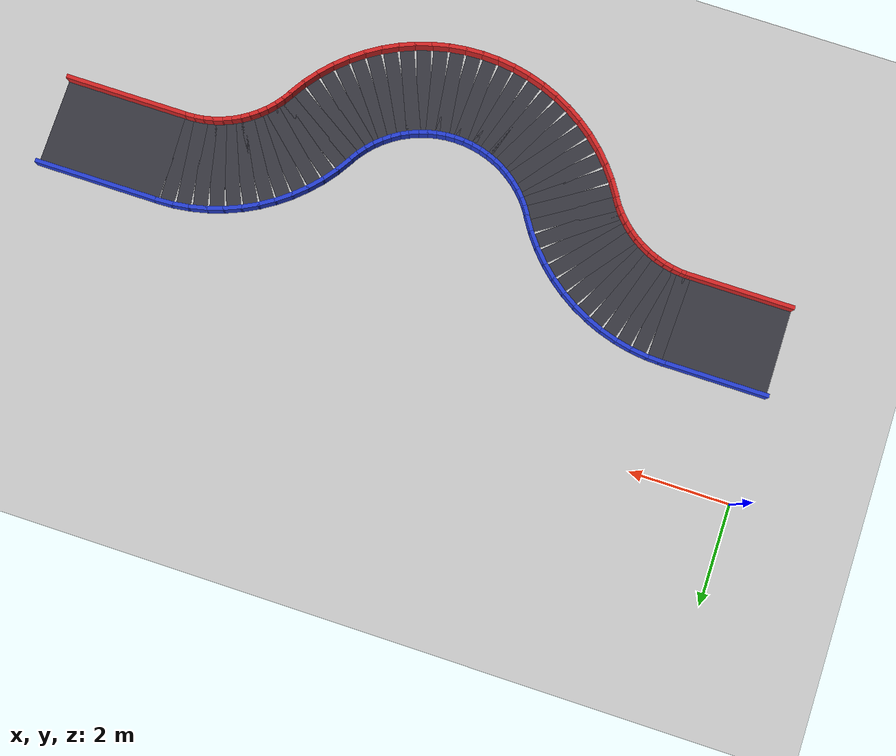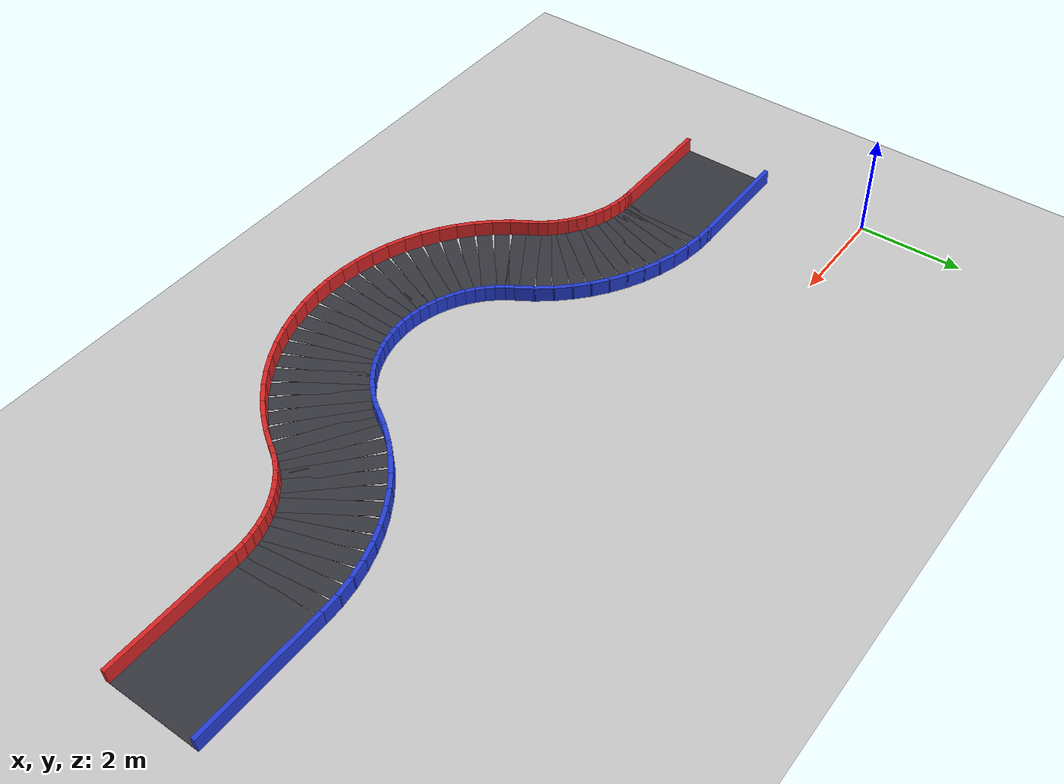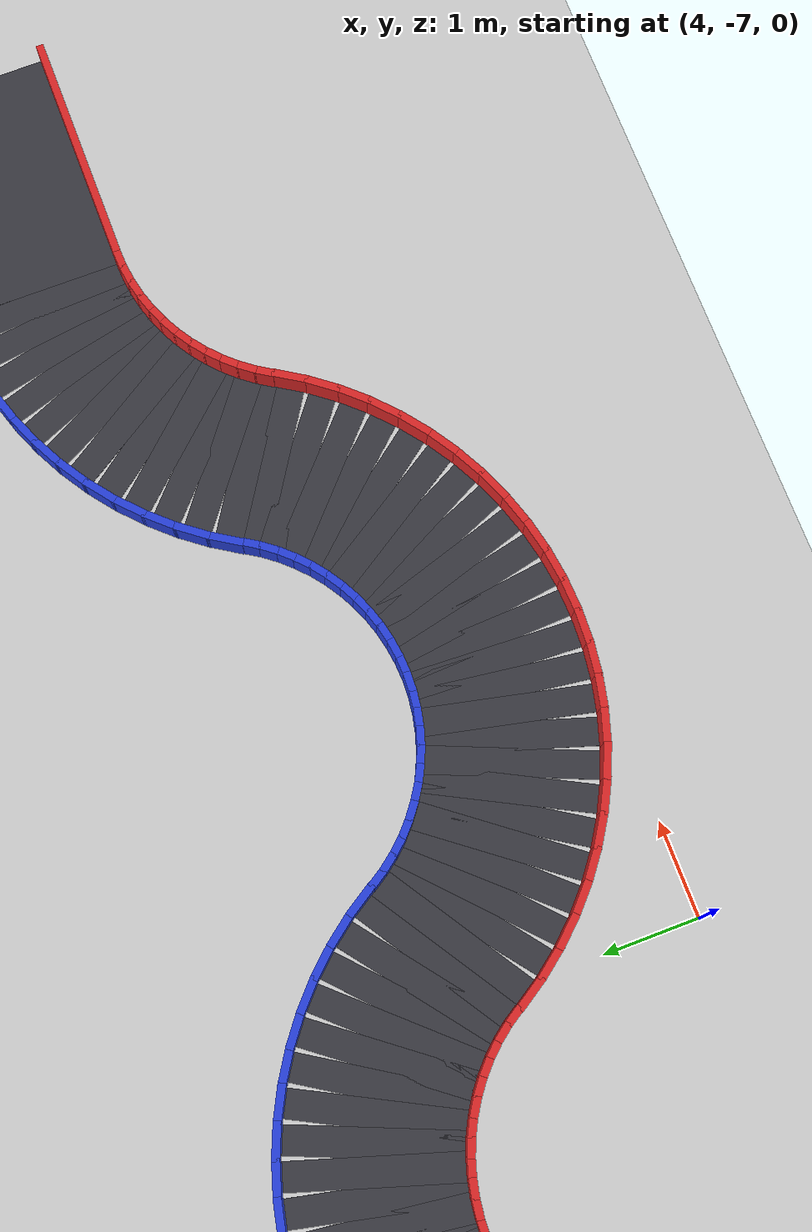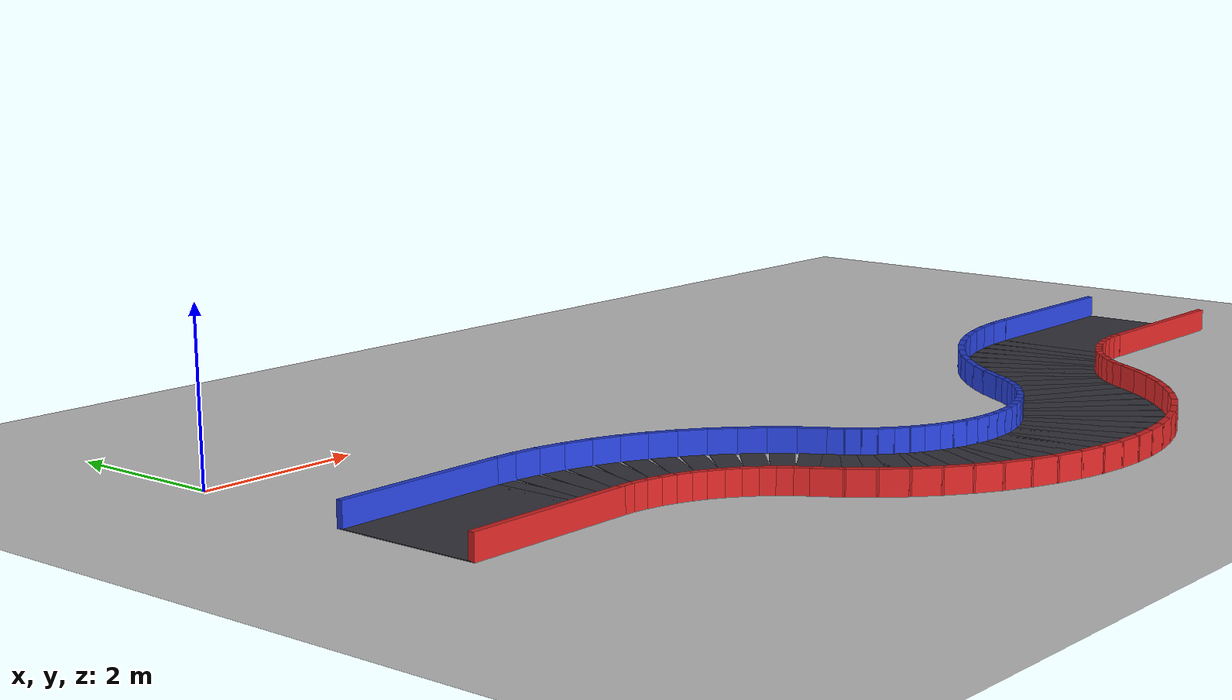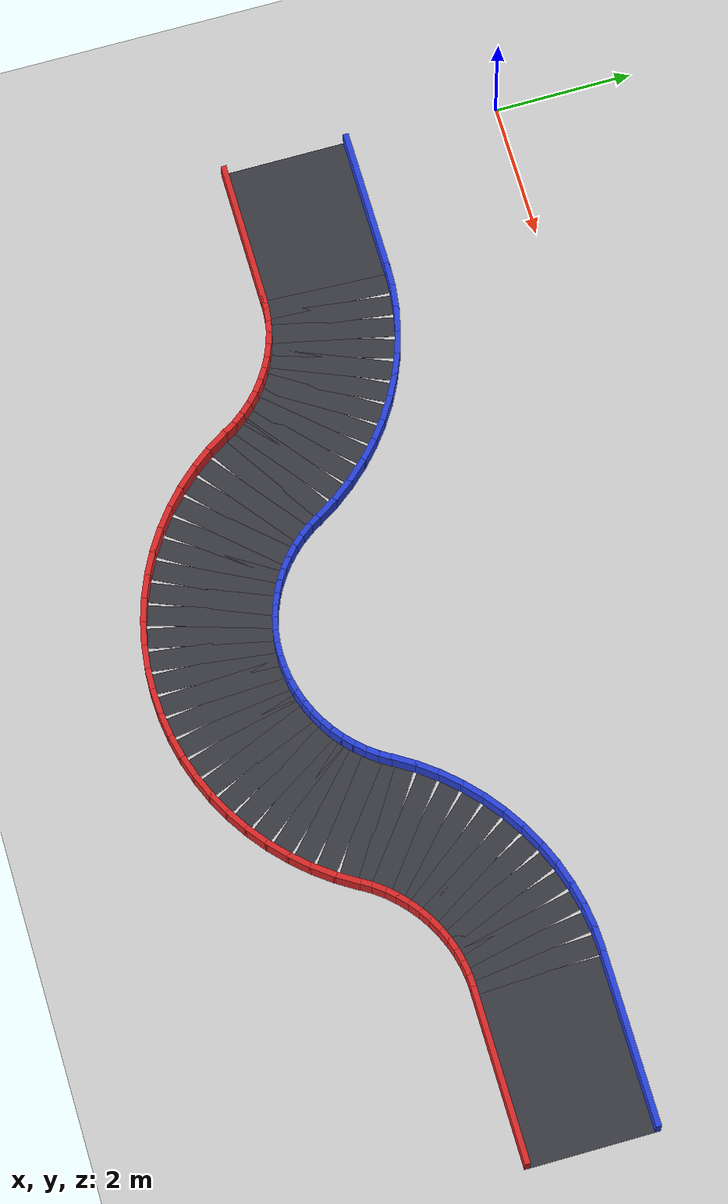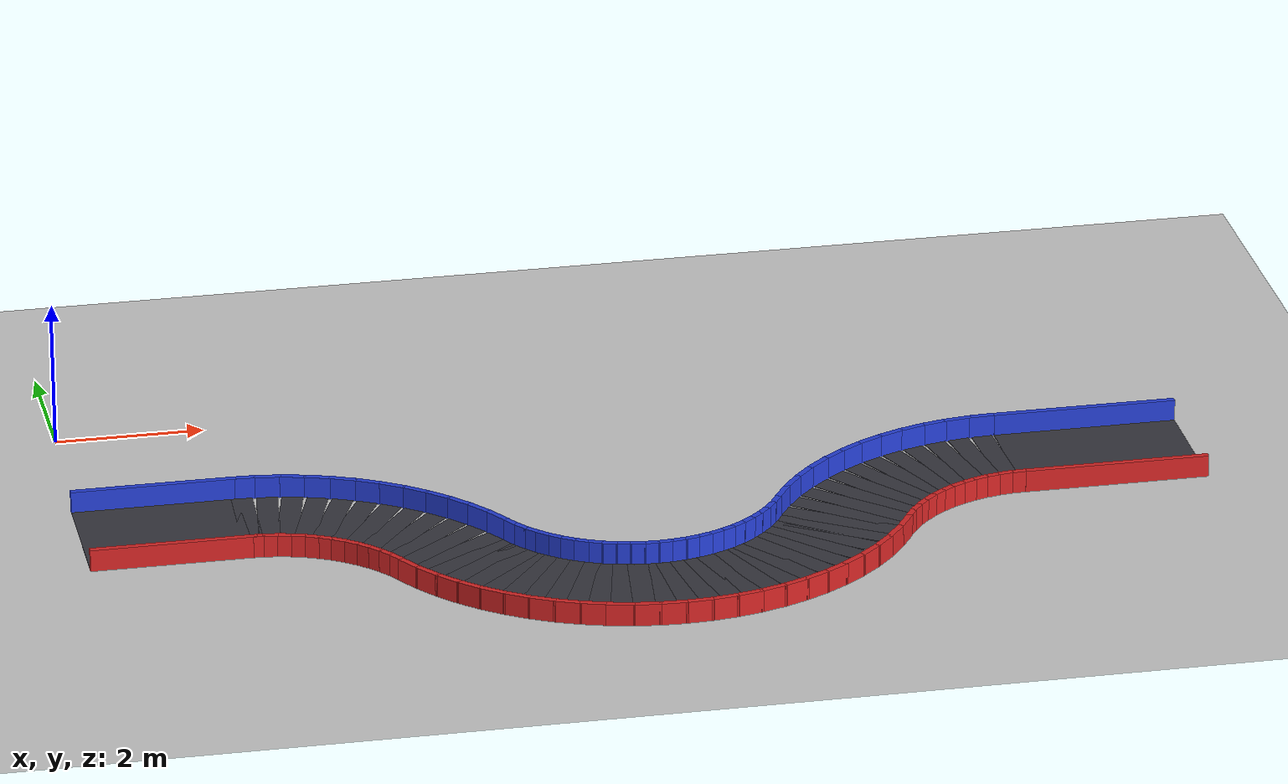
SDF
<?xml version="1.0" ?>
<sdf version="1.6">
  <world name="s_curve_world">
    <gui fullscreen="0">
      <camera name="user_camera">
        <pose>8.0 -3.1 16.0 0 1.57079 1.57079</pose>
        <view_controller>orbit</view_controller>
      </camera>
    </gui>
    <include><uri>model://ground_plane</uri></include>
    <include><uri>model://sun</uri></include>

    <!-- スタート直線 -->
    <model name="flr_st"><static>true</static><pose>1.0 -3.1 0.005 0 0 0</pose><link name="l"><visual name="v"><geometry><box><size>2.2 1.8 0.01</size></box></geometry><material><ambient>0.22 0.22 0.25 1</ambient><diffuse>0.22 0.22 0.25 1</diffuse></material></visual></link></model>
    <model name="wl_st"><static>true</static><pose>1.0 -2.2 0.15 0 0 0</pose><link name="l"><collision name="c"><geometry><box><size>2.2 0.08 0.3</size></box></geometry></collision><visual name="v"><geometry><box><size>2.2 0.08 0.3</size></box></geometry><material><ambient>0.15 0.25 0.85 1</ambient><diffuse>0.15 0.25 0.85 1</diffuse></material></visual></link></model>
    <model name="wr_st"><static>true</static><pose>1.0 -4.0 0.15 0 0 0</pose><link name="l"><collision name="c"><geometry><box><size>2.2 0.08 0.3</size></box></geometry></collision><visual name="v"><geometry><box><size>2.2 0.08 0.3</size></box></geometry><material><ambient>0.85 0.15 0.15 1</ambient><diffuse>0.85 0.15 0.15 1</diffuse></material></visual></link></model>
    <model name="f_c1_0"><static>true</static><pose>2.131 -3.103 0.005 0 0 -0.044</pose><link name="l"><visual name="v"><geometry><box><size>0.288 1.8 0.01</size></box></geometry><material><ambient>0.22 0.22 0.25 1</ambient><diffuse>0.22 0.22 0.25 1</diffuse></material></visual></link></model>
    <model name="wl_c1_0"><static>true</static><pose>2.170 -2.204 0.15 0 0 -0.044</pose><link name="l"><collision name="c"><geometry><box><size>0.374 0.08 0.3</size></box></geometry></collision><visual name="v"><geometry><box><size>0.374 0.08 0.3</size></box></geometry><material><ambient>0.15 0.25 0.85 1</ambient><diffuse>0.15 0.25 0.85 1</diffuse></material></visual></link></model>
    <model name="wr_c1_0"><static>true</static><pose>2.092 -4.002 0.15 0 0 -0.044</pose><link name="l"><collision name="c"><geometry><box><size>0.202 0.08 0.3</size></box></geometry></collision><visual name="v"><geometry><box><size>0.202 0.08 0.3</size></box></geometry><material><ambient>0.85 0.15 0.15 1</ambient><diffuse>0.85 0.15 0.15 1</diffuse></material></visual></link></model>
    <model name="f_c1_1"><static>true</static><pose>2.392 -3.126 0.005 0 0 -0.131</pose><link name="l"><visual name="v"><geometry><box><size>0.288 1.8 0.01</size></box></geometry><material><ambient>0.22 0.22 0.25 1</ambient><diffuse>0.22 0.22 0.25 1</diffuse></material></visual></link></model>
    <model name="wl_c1_1"><static>true</static><pose>2.509 -2.233 0.15 0 0 -0.131</pose><link name="l"><collision name="c"><geometry><box><size>0.374 0.08 0.3</size></box></geometry></collision><visual name="v"><geometry><box><size>0.374 0.08 0.3</size></box></geometry><material><ambient>0.15 0.25 0.85 1</ambient><diffuse>0.15 0.25 0.85 1</diffuse></material></visual></link></model>
    <model name="wr_c1_1"><static>true</static><pose>2.274 -4.018 0.15 0 0 -0.131</pose><link name="l"><collision name="c"><geometry><box><size>0.202 0.08 0.3</size></box></geometry></collision><visual name="v"><geometry><box><size>0.202 0.08 0.3</size></box></geometry><material><ambient>0.85 0.15 0.15 1</ambient><diffuse>0.85 0.15 0.15 1</diffuse></material></visual></link></model>
    <model name="f_c1_2"><static>true</static><pose>2.649 -3.171 0.005 0 0 -0.218</pose><link name="l"><visual name="v"><geometry><box><size>0.288 1.8 0.01</size></box></geometry><material><ambient>0.22 0.22 0.25 1</ambient><diffuse>0.22 0.22 0.25 1</diffuse></material></visual></link></model>
    <model name="wl_c1_2"><static>true</static><pose>2.844 -2.292 0.15 0 0 -0.218</pose><link name="l"><collision name="c"><geometry><box><size>0.374 0.08 0.3</size></box></geometry></collision><visual name="v"><geometry><box><size>0.374 0.08 0.3</size></box></geometry><material><ambient>0.15 0.25 0.85 1</ambient><diffuse>0.15 0.25 0.85 1</diffuse></material></visual></link></model>
    <model name="wr_c1_2"><static>true</static><pose>2.455 -4.050 0.15 0 0 -0.218</pose><link name="l"><collision name="c"><geometry><box><size>0.202 0.08 0.3</size></box></geometry></collision><visual name="v"><geometry><box><size>0.202 0.08 0.3</size></box></geometry><material><ambient>0.85 0.15 0.15 1</ambient><diffuse>0.85 0.15 0.15 1</diffuse></material></visual></link></model>
    <model name="f_c1_3"><static>true</static><pose>2.902 -3.239 0.005 0 0 -0.305</pose><link name="l"><visual name="v"><geometry><box><size>0.288 1.8 0.01</size></box></geometry><material><ambient>0.22 0.22 0.25 1</ambient><diffuse>0.22 0.22 0.25 1</diffuse></material></visual></link></model>
    <model name="wl_c1_3"><static>true</static><pose>3.173 -2.381 0.15 0 0 -0.305</pose><link name="l"><collision name="c"><geometry><box><size>0.374 0.08 0.3</size></box></geometry></collision><visual name="v"><geometry><box><size>0.374 0.08 0.3</size></box></geometry><material><ambient>0.15 0.25 0.85 1</ambient><diffuse>0.15 0.25 0.85 1</diffuse></material></visual></link></model>
    <model name="wr_c1_3"><static>true</static><pose>2.631 -4.097 0.15 0 0 -0.305</pose><link name="l"><collision name="c"><geometry><box><size>0.202 0.08 0.3</size></box></geometry></collision><visual name="v"><geometry><box><size>0.202 0.08 0.3</size></box></geometry><material><ambient>0.85 0.15 0.15 1</ambient><diffuse>0.85 0.15 0.15 1</diffuse></material></visual></link></model>
    <model name="f_c1_4"><static>true</static><pose>3.148 -3.328 0.005 0 0 -0.393</pose><link name="l"><visual name="v"><geometry><box><size>0.288 1.8 0.01</size></box></geometry><material><ambient>0.22 0.22 0.25 1</ambient><diffuse>0.22 0.22 0.25 1</diffuse></material></visual></link></model>
    <model name="wl_c1_4"><static>true</static><pose>3.492 -2.497 0.15 0 0 -0.393</pose><link name="l"><collision name="c"><geometry><box><size>0.374 0.08 0.3</size></box></geometry></collision><visual name="v"><geometry><box><size>0.374 0.08 0.3</size></box></geometry><material><ambient>0.15 0.25 0.85 1</ambient><diffuse>0.15 0.25 0.85 1</diffuse></material></visual></link></model>
    <model name="wr_c1_4"><static>true</static><pose>2.804 -4.160 0.15 0 0 -0.393</pose><link name="l"><collision name="c"><geometry><box><size>0.202 0.08 0.3</size></box></geometry></collision><visual name="v"><geometry><box><size>0.202 0.08 0.3</size></box></geometry><material><ambient>0.85 0.15 0.15 1</ambient><diffuse>0.85 0.15 0.15 1</diffuse></material></visual></link></model>
    <model name="f_c1_5"><static>true</static><pose>3.385 -3.439 0.005 0 0 -0.480</pose><link name="l"><visual name="v"><geometry><box><size>0.288 1.8 0.01</size></box></geometry><material><ambient>0.22 0.22 0.25 1</ambient><diffuse>0.22 0.22 0.25 1</diffuse></material></visual></link></model>
    <model name="wl_c1_5"><static>true</static><pose>3.801 -2.641 0.15 0 0 -0.480</pose><link name="l"><collision name="c"><geometry><box><size>0.374 0.08 0.3</size></box></geometry></collision><visual name="v"><geometry><box><size>0.374 0.08 0.3</size></box></geometry><material><ambient>0.15 0.25 0.85 1</ambient><diffuse>0.15 0.25 0.85 1</diffuse></material></visual></link></model>
    <model name="wr_c1_5"><static>true</static><pose>2.970 -4.237 0.15 0 0 -0.480</pose><link name="l"><collision name="c"><geometry><box><size>0.202 0.08 0.3</size></box></geometry></collision><visual name="v"><geometry><box><size>0.202 0.08 0.3</size></box></geometry><material><ambient>0.85 0.15 0.15 1</ambient><diffuse>0.85 0.15 0.15 1</diffuse></material></visual></link></model>
    <model name="f_c1_6"><static>true</static><pose>3.612 -3.570 0.005 0 0 -0.567</pose><link name="l"><visual name="v"><geometry><box><size>0.288 1.8 0.01</size></box></geometry><material><ambient>0.22 0.22 0.25 1</ambient><diffuse>0.22 0.22 0.25 1</diffuse></material></visual></link></model>
    <model name="wl_c1_6"><static>true</static><pose>4.095 -2.811 0.15 0 0 -0.567</pose><link name="l"><collision name="c"><geometry><box><size>0.374 0.08 0.3</size></box></geometry></collision><visual name="v"><geometry><box><size>0.374 0.08 0.3</size></box></geometry><material><ambient>0.15 0.25 0.85 1</ambient><diffuse>0.15 0.25 0.85 1</diffuse></material></visual></link></model>
    <model name="wr_c1_6"><static>true</static><pose>3.128 -4.329 0.15 0 0 -0.567</pose><link name="l"><collision name="c"><geometry><box><size>0.202 0.08 0.3</size></box></geometry></collision><visual name="v"><geometry><box><size>0.202 0.08 0.3</size></box></geometry><material><ambient>0.85 0.15 0.15 1</ambient><diffuse>0.85 0.15 0.15 1</diffuse></material></visual></link></model>
    <model name="f_c1_7"><static>true</static><pose>3.826 -3.720 0.005 0 0 -0.654</pose><link name="l"><visual name="v"><geometry><box><size>0.288 1.8 0.01</size></box></geometry><material><ambient>0.22 0.22 0.25 1</ambient><diffuse>0.22 0.22 0.25 1</diffuse></material></visual></link></model>
    <model name="wl_c1_7"><static>true</static><pose>4.374 -3.006 0.15 0 0 -0.654</pose><link name="l"><collision name="c"><geometry><box><size>0.374 0.08 0.3</size></box></geometry></collision><visual name="v"><geometry><box><size>0.374 0.08 0.3</size></box></geometry><material><ambient>0.15 0.25 0.85 1</ambient><diffuse>0.15 0.25 0.85 1</diffuse></material></visual></link></model>
    <model name="wr_c1_7"><static>true</static><pose>3.278 -4.434 0.15 0 0 -0.654</pose><link name="l"><collision name="c"><geometry><box><size>0.202 0.08 0.3</size></box></geometry></collision><visual name="v"><geometry><box><size>0.202 0.08 0.3</size></box></geometry><material><ambient>0.85 0.15 0.15 1</ambient><diffuse>0.85 0.15 0.15 1</diffuse></material></visual></link></model>
    <model name="f_c1_8"><static>true</static><pose>4.027 -3.888 0.005 0 0 -0.742</pose><link name="l"><visual name="v"><geometry><box><size>0.288 1.8 0.01</size></box></geometry><material><ambient>0.22 0.22 0.25 1</ambient><diffuse>0.22 0.22 0.25 1</diffuse></material></visual></link></model>
    <model name="wl_c1_8"><static>true</static><pose>4.635 -3.225 0.15 0 0 -0.742</pose><link name="l"><collision name="c"><geometry><box><size>0.374 0.08 0.3</size></box></geometry></collision><visual name="v"><geometry><box><size>0.374 0.08 0.3</size></box></geometry><material><ambient>0.15 0.25 0.85 1</ambient><diffuse>0.15 0.25 0.85 1</diffuse></material></visual></link></model>
    <model name="wr_c1_8"><static>true</static><pose>3.419 -4.552 0.15 0 0 -0.742</pose><link name="l"><collision name="c"><geometry><box><size>0.202 0.08 0.3</size></box></geometry></collision><visual name="v"><geometry><box><size>0.202 0.08 0.3</size></box></geometry><material><ambient>0.85 0.15 0.15 1</ambient><diffuse>0.85 0.15 0.15 1</diffuse></material></visual></link></model>
    <model name="f_c1_9"><static>true</static><pose>4.212 -4.073 0.005 0 0 -0.829</pose><link name="l"><visual name="v"><geometry><box><size>0.288 1.8 0.01</size></box></geometry><material><ambient>0.22 0.22 0.25 1</ambient><diffuse>0.22 0.22 0.25 1</diffuse></material></visual></link></model>
    <model name="wl_c1_9"><static>true</static><pose>4.875 -3.465 0.15 0 0 -0.829</pose><link name="l"><collision name="c"><geometry><box><size>0.374 0.08 0.3</size></box></geometry></collision><visual name="v"><geometry><box><size>0.374 0.08 0.3</size></box></geometry><material><ambient>0.15 0.25 0.85 1</ambient><diffuse>0.15 0.25 0.85 1</diffuse></material></visual></link></model>
    <model name="wr_c1_9"><static>true</static><pose>3.548 -4.681 0.15 0 0 -0.829</pose><link name="l"><collision name="c"><geometry><box><size>0.202 0.08 0.3</size></box></geometry></collision><visual name="v"><geometry><box><size>0.202 0.08 0.3</size></box></geometry><material><ambient>0.85 0.15 0.15 1</ambient><diffuse>0.85 0.15 0.15 1</diffuse></material></visual></link></model>
    <model name="f_c1_10"><static>true</static><pose>4.380 -4.274 0.005 0 0 -0.916</pose><link name="l"><visual name="v"><geometry><box><size>0.288 1.8 0.01</size></box></geometry><material><ambient>0.22 0.22 0.25 1</ambient><diffuse>0.22 0.22 0.25 1</diffuse></material></visual></link></model>
    <model name="wl_c1_10"><static>true</static><pose>5.094 -3.726 0.15 0 0 -0.916</pose><link name="l"><collision name="c"><geometry><box><size>0.374 0.08 0.3</size></box></geometry></collision><visual name="v"><geometry><box><size>0.374 0.08 0.3</size></box></geometry><material><ambient>0.15 0.25 0.85 1</ambient><diffuse>0.15 0.25 0.85 1</diffuse></material></visual></link></model>
    <model name="wr_c1_10"><static>true</static><pose>3.666 -4.822 0.15 0 0 -0.916</pose><link name="l"><collision name="c"><geometry><box><size>0.202 0.08 0.3</size></box></geometry></collision><visual name="v"><geometry><box><size>0.202 0.08 0.3</size></box></geometry><material><ambient>0.85 0.15 0.15 1</ambient><diffuse>0.85 0.15 0.15 1</diffuse></material></visual></link></model>
    <model name="f_c1_11"><static>true</static><pose>4.530 -4.488 0.005 0 0 -1.004</pose><link name="l"><visual name="v"><geometry><box><size>0.288 1.8 0.01</size></box></geometry><material><ambient>0.22 0.22 0.25 1</ambient><diffuse>0.22 0.22 0.25 1</diffuse></material></visual></link></model>
    <model name="wl_c1_11"><static>true</static><pose>5.289 -4.005 0.15 0 0 -1.004</pose><link name="l"><collision name="c"><geometry><box><size>0.374 0.08 0.3</size></box></geometry></collision><visual name="v"><geometry><box><size>0.374 0.08 0.3</size></box></geometry><material><ambient>0.15 0.25 0.85 1</ambient><diffuse>0.15 0.25 0.85 1</diffuse></material></visual></link></model>
    <model name="wr_c1_11"><static>true</static><pose>3.771 -4.972 0.15 0 0 -1.004</pose><link name="l"><collision name="c"><geometry><box><size>0.202 0.08 0.3</size></box></geometry></collision><visual name="v"><geometry><box><size>0.202 0.08 0.3</size></box></geometry><material><ambient>0.85 0.15 0.15 1</ambient><diffuse>0.85 0.15 0.15 1</diffuse></material></visual></link></model>
    <model name="f_c2_0"><static>true</static><pose>4.666 -4.712 0.005 0 0 -1.004</pose><link name="l"><visual name="v"><geometry><box><size>0.288 1.8 0.01</size></box></geometry><material><ambient>0.22 0.22 0.25 1</ambient><diffuse>0.22 0.22 0.25 1</diffuse></material></visual></link></model>
    <model name="wl_c2_0"><static>true</static><pose>5.425 -4.228 0.15 0 0 -1.004</pose><link name="l"><collision name="c"><geometry><box><size>0.202 0.08 0.3</size></box></geometry></collision><visual name="v"><geometry><box><size>0.202 0.08 0.3</size></box></geometry><material><ambient>0.15 0.25 0.85 1</ambient><diffuse>0.15 0.25 0.85 1</diffuse></material></visual></link></model>
    <model name="wr_c2_0"><static>true</static><pose>3.907 -5.195 0.15 0 0 -1.004</pose><link name="l"><collision name="c"><geometry><box><size>0.374 0.08 0.3</size></box></geometry></collision><visual name="v"><geometry><box><size>0.374 0.08 0.3</size></box></geometry><material><ambient>0.85 0.15 0.15 1</ambient><diffuse>0.85 0.15 0.15 1</diffuse></material></visual></link></model>
    <model name="f_c2_1"><static>true</static><pose>4.816 -4.926 0.005 0 0 -0.916</pose><link name="l"><visual name="v"><geometry><box><size>0.288 1.8 0.01</size></box></geometry><material><ambient>0.22 0.22 0.25 1</ambient><diffuse>0.22 0.22 0.25 1</diffuse></material></visual></link></model>
    <model name="wl_c2_1"><static>true</static><pose>5.530 -4.378 0.15 0 0 -0.916</pose><link name="l"><collision name="c"><geometry><box><size>0.202 0.08 0.3</size></box></geometry></collision><visual name="v"><geometry><box><size>0.202 0.08 0.3</size></box></geometry><material><ambient>0.15 0.25 0.85 1</ambient><diffuse>0.15 0.25 0.85 1</diffuse></material></visual></link></model>
    <model name="wr_c2_1"><static>true</static><pose>4.102 -5.474 0.15 0 0 -0.916</pose><link name="l"><collision name="c"><geometry><box><size>0.374 0.08 0.3</size></box></geometry></collision><visual name="v"><geometry><box><size>0.374 0.08 0.3</size></box></geometry><material><ambient>0.85 0.15 0.15 1</ambient><diffuse>0.85 0.15 0.15 1</diffuse></material></visual></link></model>
    <model name="f_c2_2"><static>true</static><pose>4.984 -5.127 0.005 0 0 -0.829</pose><link name="l"><visual name="v"><geometry><box><size>0.288 1.8 0.01</size></box></geometry><material><ambient>0.22 0.22 0.25 1</ambient><diffuse>0.22 0.22 0.25 1</diffuse></material></visual></link></model>
    <model name="wl_c2_2"><static>true</static><pose>5.648 -4.519 0.15 0 0 -0.829</pose><link name="l"><collision name="c"><geometry><box><size>0.202 0.08 0.3</size></box></geometry></collision><visual name="v"><geometry><box><size>0.202 0.08 0.3</size></box></geometry><material><ambient>0.15 0.25 0.85 1</ambient><diffuse>0.15 0.25 0.85 1</diffuse></material></visual></link></model>
    <model name="wr_c2_2"><static>true</static><pose>4.321 -5.735 0.15 0 0 -0.829</pose><link name="l"><collision name="c"><geometry><box><size>0.374 0.08 0.3</size></box></geometry></collision><visual name="v"><geometry><box><size>0.374 0.08 0.3</size></box></geometry><material><ambient>0.85 0.15 0.15 1</ambient><diffuse>0.85 0.15 0.15 1</diffuse></material></visual></link></model>
    <model name="f_c2_3"><static>true</static><pose>5.169 -5.312 0.005 0 0 -0.742</pose><link name="l"><visual name="v"><geometry><box><size>0.288 1.8 0.01</size></box></geometry><material><ambient>0.22 0.22 0.25 1</ambient><diffuse>0.22 0.22 0.25 1</diffuse></material></visual></link></model>
    <model name="wl_c2_3"><static>true</static><pose>5.777 -4.648 0.15 0 0 -0.742</pose><link name="l"><collision name="c"><geometry><box><size>0.202 0.08 0.3</size></box></geometry></collision><visual name="v"><geometry><box><size>0.202 0.08 0.3</size></box></geometry><material><ambient>0.15 0.25 0.85 1</ambient><diffuse>0.15 0.25 0.85 1</diffuse></material></visual></link></model>
    <model name="wr_c2_3"><static>true</static><pose>4.561 -5.975 0.15 0 0 -0.742</pose><link name="l"><collision name="c"><geometry><box><size>0.374 0.08 0.3</size></box></geometry></collision><visual name="v"><geometry><box><size>0.374 0.08 0.3</size></box></geometry><material><ambient>0.85 0.15 0.15 1</ambient><diffuse>0.85 0.15 0.15 1</diffuse></material></visual></link></model>
    <model name="f_c2_4"><static>true</static><pose>5.370 -5.480 0.005 0 0 -0.654</pose><link name="l"><visual name="v"><geometry><box><size>0.288 1.8 0.01</size></box></geometry><material><ambient>0.22 0.22 0.25 1</ambient><diffuse>0.22 0.22 0.25 1</diffuse></material></visual></link></model>
    <model name="wl_c2_4"><static>true</static><pose>5.918 -4.766 0.15 0 0 -0.654</pose><link name="l"><collision name="c"><geometry><box><size>0.202 0.08 0.3</size></box></geometry></collision><visual name="v"><geometry><box><size>0.202 0.08 0.3</size></box></geometry><material><ambient>0.15 0.25 0.85 1</ambient><diffuse>0.15 0.25 0.85 1</diffuse></material></visual></link></model>
    <model name="wr_c2_4"><static>true</static><pose>4.822 -6.194 0.15 0 0 -0.654</pose><link name="l"><collision name="c"><geometry><box><size>0.374 0.08 0.3</size></box></geometry></collision><visual name="v"><geometry><box><size>0.374 0.08 0.3</size></box></geometry><material><ambient>0.85 0.15 0.15 1</ambient><diffuse>0.85 0.15 0.15 1</diffuse></material></visual></link></model>
    <model name="f_c2_5"><static>true</static><pose>5.584 -5.630 0.005 0 0 -0.567</pose><link name="l"><visual name="v"><geometry><box><size>0.288 1.8 0.01</size></box></geometry><material><ambient>0.22 0.22 0.25 1</ambient><diffuse>0.22 0.22 0.25 1</diffuse></material></visual></link></model>
    <model name="wl_c2_5"><static>true</static><pose>6.068 -4.871 0.15 0 0 -0.567</pose><link name="l"><collision name="c"><geometry><box><size>0.202 0.08 0.3</size></box></geometry></collision><visual name="v"><geometry><box><size>0.202 0.08 0.3</size></box></geometry><material><ambient>0.15 0.25 0.85 1</ambient><diffuse>0.15 0.25 0.85 1</diffuse></material></visual></link></model>
    <model name="wr_c2_5"><static>true</static><pose>5.101 -6.389 0.15 0 0 -0.567</pose><link name="l"><collision name="c"><geometry><box><size>0.374 0.08 0.3</size></box></geometry></collision><visual name="v"><geometry><box><size>0.374 0.08 0.3</size></box></geometry><material><ambient>0.85 0.15 0.15 1</ambient><diffuse>0.85 0.15 0.15 1</diffuse></material></visual></link></model>
    <model name="f_c2_6"><static>true</static><pose>5.811 -5.761 0.005 0 0 -0.480</pose><link name="l"><visual name="v"><geometry><box><size>0.288 1.8 0.01</size></box></geometry><material><ambient>0.22 0.22 0.25 1</ambient><diffuse>0.22 0.22 0.25 1</diffuse></material></visual></link></model>
    <model name="wl_c2_6"><static>true</static><pose>6.226 -4.963 0.15 0 0 -0.480</pose><link name="l"><collision name="c"><geometry><box><size>0.202 0.08 0.3</size></box></geometry></collision><visual name="v"><geometry><box><size>0.202 0.08 0.3</size></box></geometry><material><ambient>0.15 0.25 0.85 1</ambient><diffuse>0.15 0.25 0.85 1</diffuse></material></visual></link></model>
    <model name="wr_c2_6"><static>true</static><pose>5.395 -6.559 0.15 0 0 -0.480</pose><link name="l"><collision name="c"><geometry><box><size>0.374 0.08 0.3</size></box></geometry></collision><visual name="v"><geometry><box><size>0.374 0.08 0.3</size></box></geometry><material><ambient>0.85 0.15 0.15 1</ambient><diffuse>0.85 0.15 0.15 1</diffuse></material></visual></link></model>
    <model name="f_c2_7"><static>true</static><pose>6.048 -5.872 0.005 0 0 -0.393</pose><link name="l"><visual name="v"><geometry><box><size>0.288 1.8 0.01</size></box></geometry><material><ambient>0.22 0.22 0.25 1</ambient><diffuse>0.22 0.22 0.25 1</diffuse></material></visual></link></model>
    <model name="wl_c2_7"><static>true</static><pose>6.393 -5.040 0.15 0 0 -0.393</pose><link name="l"><collision name="c"><geometry><box><size>0.202 0.08 0.3</size></box></geometry></collision><visual name="v"><geometry><box><size>0.202 0.08 0.3</size></box></geometry><material><ambient>0.15 0.25 0.85 1</ambient><diffuse>0.15 0.25 0.85 1</diffuse></material></visual></link></model>
    <model name="wr_c2_7"><static>true</static><pose>5.704 -6.703 0.15 0 0 -0.393</pose><link name="l"><collision name="c"><geometry><box><size>0.374 0.08 0.3</size></box></geometry></collision><visual name="v"><geometry><box><size>0.374 0.08 0.3</size></box></geometry><material><ambient>0.85 0.15 0.15 1</ambient><diffuse>0.85 0.15 0.15 1</diffuse></material></visual></link></model>
    <model name="f_c2_8"><static>true</static><pose>6.294 -5.961 0.005 0 0 -0.305</pose><link name="l"><visual name="v"><geometry><box><size>0.288 1.8 0.01</size></box></geometry><material><ambient>0.22 0.22 0.25 1</ambient><diffuse>0.22 0.22 0.25 1</diffuse></material></visual></link></model>
    <model name="wl_c2_8"><static>true</static><pose>6.565 -5.103 0.15 0 0 -0.305</pose><link name="l"><collision name="c"><geometry><box><size>0.202 0.08 0.3</size></box></geometry></collision><visual name="v"><geometry><box><size>0.202 0.08 0.3</size></box></geometry><material><ambient>0.15 0.25 0.85 1</ambient><diffuse>0.15 0.25 0.85 1</diffuse></material></visual></link></model>
    <model name="wr_c2_8"><static>true</static><pose>6.023 -6.819 0.15 0 0 -0.305</pose><link name="l"><collision name="c"><geometry><box><size>0.374 0.08 0.3</size></box></geometry></collision><visual name="v"><geometry><box><size>0.374 0.08 0.3</size></box></geometry><material><ambient>0.85 0.15 0.15 1</ambient><diffuse>0.85 0.15 0.15 1</diffuse></material></visual></link></model>
    <model name="f_c2_9"><static>true</static><pose>6.547 -6.029 0.005 0 0 -0.218</pose><link name="l"><visual name="v"><geometry><box><size>0.288 1.8 0.01</size></box></geometry><material><ambient>0.22 0.22 0.25 1</ambient><diffuse>0.22 0.22 0.25 1</diffuse></material></visual></link></model>
    <model name="wl_c2_9"><static>true</static><pose>6.742 -5.150 0.15 0 0 -0.218</pose><link name="l"><collision name="c"><geometry><box><size>0.202 0.08 0.3</size></box></geometry></collision><visual name="v"><geometry><box><size>0.202 0.08 0.3</size></box></geometry><material><ambient>0.15 0.25 0.85 1</ambient><diffuse>0.15 0.25 0.85 1</diffuse></material></visual></link></model>
    <model name="wr_c2_9"><static>true</static><pose>6.352 -6.908 0.15 0 0 -0.218</pose><link name="l"><collision name="c"><geometry><box><size>0.374 0.08 0.3</size></box></geometry></collision><visual name="v"><geometry><box><size>0.374 0.08 0.3</size></box></geometry><material><ambient>0.85 0.15 0.15 1</ambient><diffuse>0.85 0.15 0.15 1</diffuse></material></visual></link></model>
    <model name="f_c2_10"><static>true</static><pose>6.805 -6.074 0.005 0 0 -0.131</pose><link name="l"><visual name="v"><geometry><box><size>0.288 1.8 0.01</size></box></geometry><material><ambient>0.22 0.22 0.25 1</ambient><diffuse>0.22 0.22 0.25 1</diffuse></material></visual></link></model>
    <model name="wl_c2_10"><static>true</static><pose>6.922 -5.182 0.15 0 0 -0.131</pose><link name="l"><collision name="c"><geometry><box><size>0.202 0.08 0.3</size></box></geometry></collision><visual name="v"><geometry><box><size>0.202 0.08 0.3</size></box></geometry><material><ambient>0.15 0.25 0.85 1</ambient><diffuse>0.15 0.25 0.85 1</diffuse></material></visual></link></model>
    <model name="wr_c2_10"><static>true</static><pose>6.687 -6.967 0.15 0 0 -0.131</pose><link name="l"><collision name="c"><geometry><box><size>0.374 0.08 0.3</size></box></geometry></collision><visual name="v"><geometry><box><size>0.374 0.08 0.3</size></box></geometry><material><ambient>0.85 0.15 0.15 1</ambient><diffuse>0.85 0.15 0.15 1</diffuse></material></visual></link></model>
    <model name="f_c2_11"><static>true</static><pose>7.065 -6.097 0.005 0 0 -0.044</pose><link name="l"><visual name="v"><geometry><box><size>0.288 1.8 0.01</size></box></geometry><material><ambient>0.22 0.22 0.25 1</ambient><diffuse>0.22 0.22 0.25 1</diffuse></material></visual></link></model>
    <model name="wl_c2_11"><static>true</static><pose>7.105 -5.198 0.15 0 0 -0.044</pose><link name="l"><collision name="c"><geometry><box><size>0.202 0.08 0.3</size></box></geometry></collision><visual name="v"><geometry><box><size>0.202 0.08 0.3</size></box></geometry><material><ambient>0.15 0.25 0.85 1</ambient><diffuse>0.15 0.25 0.85 1</diffuse></material></visual></link></model>
    <model name="wr_c2_11"><static>true</static><pose>7.026 -6.996 0.15 0 0 -0.044</pose><link name="l"><collision name="c"><geometry><box><size>0.374 0.08 0.3</size></box></geometry></collision><visual name="v"><geometry><box><size>0.374 0.08 0.3</size></box></geometry><material><ambient>0.85 0.15 0.15 1</ambient><diffuse>0.85 0.15 0.15 1</diffuse></material></visual></link></model>
    <model name="f_c2_12"><static>true</static><pose>7.327 -6.097 0.005 0 0 0.044</pose><link name="l"><visual name="v"><geometry><box><size>0.288 1.8 0.01</size></box></geometry><material><ambient>0.22 0.22 0.25 1</ambient><diffuse>0.22 0.22 0.25 1</diffuse></material></visual></link></model>
    <model name="wl_c2_12"><static>true</static><pose>7.288 -5.198 0.15 0 0 0.044</pose><link name="l"><collision name="c"><geometry><box><size>0.202 0.08 0.3</size></box></geometry></collision><visual name="v"><geometry><box><size>0.202 0.08 0.3</size></box></geometry><material><ambient>0.15 0.25 0.85 1</ambient><diffuse>0.15 0.25 0.85 1</diffuse></material></visual></link></model>
    <model name="wr_c2_12"><static>true</static><pose>7.366 -6.996 0.15 0 0 0.044</pose><link name="l"><collision name="c"><geometry><box><size>0.374 0.08 0.3</size></box></geometry></collision><visual name="v"><geometry><box><size>0.374 0.08 0.3</size></box></geometry><material><ambient>0.85 0.15 0.15 1</ambient><diffuse>0.85 0.15 0.15 1</diffuse></material></visual></link></model>
    <model name="f_c2_13"><static>true</static><pose>7.588 -6.074 0.005 0 0 0.131</pose><link name="l"><visual name="v"><geometry><box><size>0.288 1.8 0.01</size></box></geometry><material><ambient>0.22 0.22 0.25 1</ambient><diffuse>0.22 0.22 0.25 1</diffuse></material></visual></link></model>
    <model name="wl_c2_13"><static>true</static><pose>7.470 -5.182 0.15 0 0 0.131</pose><link name="l"><collision name="c"><geometry><box><size>0.202 0.08 0.3</size></box></geometry></collision><visual name="v"><geometry><box><size>0.202 0.08 0.3</size></box></geometry><material><ambient>0.15 0.25 0.85 1</ambient><diffuse>0.15 0.25 0.85 1</diffuse></material></visual></link></model>
    <model name="wr_c2_13"><static>true</static><pose>7.705 -6.967 0.15 0 0 0.131</pose><link name="l"><collision name="c"><geometry><box><size>0.374 0.08 0.3</size></box></geometry></collision><visual name="v"><geometry><box><size>0.374 0.08 0.3</size></box></geometry><material><ambient>0.85 0.15 0.15 1</ambient><diffuse>0.85 0.15 0.15 1</diffuse></material></visual></link></model>
    <model name="f_c2_14"><static>true</static><pose>7.845 -6.029 0.005 0 0 0.218</pose><link name="l"><visual name="v"><geometry><box><size>0.288 1.8 0.01</size></box></geometry><material><ambient>0.22 0.22 0.25 1</ambient><diffuse>0.22 0.22 0.25 1</diffuse></material></visual></link></model>
    <model name="wl_c2_14"><static>true</static><pose>7.651 -5.150 0.15 0 0 0.218</pose><link name="l"><collision name="c"><geometry><box><size>0.202 0.08 0.3</size></box></geometry></collision><visual name="v"><geometry><box><size>0.202 0.08 0.3</size></box></geometry><material><ambient>0.15 0.25 0.85 1</ambient><diffuse>0.15 0.25 0.85 1</diffuse></material></visual></link></model>
    <model name="wr_c2_14"><static>true</static><pose>8.040 -6.908 0.15 0 0 0.218</pose><link name="l"><collision name="c"><geometry><box><size>0.374 0.08 0.3</size></box></geometry></collision><visual name="v"><geometry><box><size>0.374 0.08 0.3</size></box></geometry><material><ambient>0.85 0.15 0.15 1</ambient><diffuse>0.85 0.15 0.15 1</diffuse></material></visual></link></model>
    <model name="f_c2_15"><static>true</static><pose>8.098 -5.961 0.005 0 0 0.305</pose><link name="l"><visual name="v"><geometry><box><size>0.288 1.8 0.01</size></box></geometry><material><ambient>0.22 0.22 0.25 1</ambient><diffuse>0.22 0.22 0.25 1</diffuse></material></visual></link></model>
    <model name="wl_c2_15"><static>true</static><pose>7.828 -5.103 0.15 0 0 0.305</pose><link name="l"><collision name="c"><geometry><box><size>0.202 0.08 0.3</size></box></geometry></collision><visual name="v"><geometry><box><size>0.202 0.08 0.3</size></box></geometry><material><ambient>0.15 0.25 0.85 1</ambient><diffuse>0.15 0.25 0.85 1</diffuse></material></visual></link></model>
    <model name="wr_c2_15"><static>true</static><pose>8.369 -6.819 0.15 0 0 0.305</pose><link name="l"><collision name="c"><geometry><box><size>0.374 0.08 0.3</size></box></geometry></collision><visual name="v"><geometry><box><size>0.374 0.08 0.3</size></box></geometry><material><ambient>0.85 0.15 0.15 1</ambient><diffuse>0.85 0.15 0.15 1</diffuse></material></visual></link></model>
    <model name="f_c2_16"><static>true</static><pose>8.344 -5.872 0.005 0 0 0.393</pose><link name="l"><visual name="v"><geometry><box><size>0.288 1.8 0.01</size></box></geometry><material><ambient>0.22 0.22 0.25 1</ambient><diffuse>0.22 0.22 0.25 1</diffuse></material></visual></link></model>
    <model name="wl_c2_16"><static>true</static><pose>8.000 -5.040 0.15 0 0 0.393</pose><link name="l"><collision name="c"><geometry><box><size>0.202 0.08 0.3</size></box></geometry></collision><visual name="v"><geometry><box><size>0.202 0.08 0.3</size></box></geometry><material><ambient>0.15 0.25 0.85 1</ambient><diffuse>0.15 0.25 0.85 1</diffuse></material></visual></link></model>
    <model name="wr_c2_16"><static>true</static><pose>8.689 -6.703 0.15 0 0 0.393</pose><link name="l"><collision name="c"><geometry><box><size>0.374 0.08 0.3</size></box></geometry></collision><visual name="v"><geometry><box><size>0.374 0.08 0.3</size></box></geometry><material><ambient>0.85 0.15 0.15 1</ambient><diffuse>0.85 0.15 0.15 1</diffuse></material></visual></link></model>
    <model name="f_c2_17"><static>true</static><pose>8.581 -5.761 0.005 0 0 0.480</pose><link name="l"><visual name="v"><geometry><box><size>0.288 1.8 0.01</size></box></geometry><material><ambient>0.22 0.22 0.25 1</ambient><diffuse>0.22 0.22 0.25 1</diffuse></material></visual></link></model>
    <model name="wl_c2_17"><static>true</static><pose>8.166 -4.963 0.15 0 0 0.480</pose><link name="l"><collision name="c"><geometry><box><size>0.202 0.08 0.3</size></box></geometry></collision><visual name="v"><geometry><box><size>0.202 0.08 0.3</size></box></geometry><material><ambient>0.15 0.25 0.85 1</ambient><diffuse>0.15 0.25 0.85 1</diffuse></material></visual></link></model>
    <model name="wr_c2_17"><static>true</static><pose>8.997 -6.559 0.15 0 0 0.480</pose><link name="l"><collision name="c"><geometry><box><size>0.374 0.08 0.3</size></box></geometry></collision><visual name="v"><geometry><box><size>0.374 0.08 0.3</size></box></geometry><material><ambient>0.85 0.15 0.15 1</ambient><diffuse>0.85 0.15 0.15 1</diffuse></material></visual></link></model>
    <model name="f_c2_18"><static>true</static><pose>8.808 -5.630 0.005 0 0 0.567</pose><link name="l"><visual name="v"><geometry><box><size>0.288 1.8 0.01</size></box></geometry><material><ambient>0.22 0.22 0.25 1</ambient><diffuse>0.22 0.22 0.25 1</diffuse></material></visual></link></model>
    <model name="wl_c2_18"><static>true</static><pose>8.324 -4.871 0.15 0 0 0.567</pose><link name="l"><collision name="c"><geometry><box><size>0.202 0.08 0.3</size></box></geometry></collision><visual name="v"><geometry><box><size>0.202 0.08 0.3</size></box></geometry><material><ambient>0.15 0.25 0.85 1</ambient><diffuse>0.15 0.25 0.85 1</diffuse></material></visual></link></model>
    <model name="wr_c2_18"><static>true</static><pose>9.292 -6.389 0.15 0 0 0.567</pose><link name="l"><collision name="c"><geometry><box><size>0.374 0.08 0.3</size></box></geometry></collision><visual name="v"><geometry><box><size>0.374 0.08 0.3</size></box></geometry><material><ambient>0.85 0.15 0.15 1</ambient><diffuse>0.85 0.15 0.15 1</diffuse></material></visual></link></model>
    <model name="f_c2_19"><static>true</static><pose>9.022 -5.480 0.005 0 0 0.654</pose><link name="l"><visual name="v"><geometry><box><size>0.288 1.8 0.01</size></box></geometry><material><ambient>0.22 0.22 0.25 1</ambient><diffuse>0.22 0.22 0.25 1</diffuse></material></visual></link></model>
    <model name="wl_c2_19"><static>true</static><pose>8.475 -4.766 0.15 0 0 0.654</pose><link name="l"><collision name="c"><geometry><box><size>0.202 0.08 0.3</size></box></geometry></collision><visual name="v"><geometry><box><size>0.202 0.08 0.3</size></box></geometry><material><ambient>0.15 0.25 0.85 1</ambient><diffuse>0.15 0.25 0.85 1</diffuse></material></visual></link></model>
    <model name="wr_c2_19"><static>true</static><pose>9.570 -6.194 0.15 0 0 0.654</pose><link name="l"><collision name="c"><geometry><box><size>0.374 0.08 0.3</size></box></geometry></collision><visual name="v"><geometry><box><size>0.374 0.08 0.3</size></box></geometry><material><ambient>0.85 0.15 0.15 1</ambient><diffuse>0.85 0.15 0.15 1</diffuse></material></visual></link></model>
    <model name="f_c2_20"><static>true</static><pose>9.223 -5.312 0.005 0 0 0.742</pose><link name="l"><visual name="v"><geometry><box><size>0.288 1.8 0.01</size></box></geometry><material><ambient>0.22 0.22 0.25 1</ambient><diffuse>0.22 0.22 0.25 1</diffuse></material></visual></link></model>
    <model name="wl_c2_20"><static>true</static><pose>8.615 -4.648 0.15 0 0 0.742</pose><link name="l"><collision name="c"><geometry><box><size>0.202 0.08 0.3</size></box></geometry></collision><visual name="v"><geometry><box><size>0.202 0.08 0.3</size></box></geometry><material><ambient>0.15 0.25 0.85 1</ambient><diffuse>0.15 0.25 0.85 1</diffuse></material></visual></link></model>
    <model name="wr_c2_20"><static>true</static><pose>9.831 -5.975 0.15 0 0 0.742</pose><link name="l"><collision name="c"><geometry><box><size>0.374 0.08 0.3</size></box></geometry></collision><visual name="v"><geometry><box><size>0.374 0.08 0.3</size></box></geometry><material><ambient>0.85 0.15 0.15 1</ambient><diffuse>0.85 0.15 0.15 1</diffuse></material></visual></link></model>
    <model name="f_c2_21"><static>true</static><pose>9.408 -5.127 0.005 0 0 0.829</pose><link name="l"><visual name="v"><geometry><box><size>0.288 1.8 0.01</size></box></geometry><material><ambient>0.22 0.22 0.25 1</ambient><diffuse>0.22 0.22 0.25 1</diffuse></material></visual></link></model>
    <model name="wl_c2_21"><static>true</static><pose>8.744 -4.519 0.15 0 0 0.829</pose><link name="l"><collision name="c"><geometry><box><size>0.202 0.08 0.3</size></box></geometry></collision><visual name="v"><geometry><box><size>0.202 0.08 0.3</size></box></geometry><material><ambient>0.15 0.25 0.85 1</ambient><diffuse>0.15 0.25 0.85 1</diffuse></material></visual></link></model>
    <model name="wr_c2_21"><static>true</static><pose>10.072 -5.735 0.15 0 0 0.829</pose><link name="l"><collision name="c"><geometry><box><size>0.374 0.08 0.3</size></box></geometry></collision><visual name="v"><geometry><box><size>0.374 0.08 0.3</size></box></geometry><material><ambient>0.85 0.15 0.15 1</ambient><diffuse>0.85 0.15 0.15 1</diffuse></material></visual></link></model>
    <model name="f_c2_22"><static>true</static><pose>9.576 -4.926 0.005 0 0 0.916</pose><link name="l"><visual name="v"><geometry><box><size>0.288 1.8 0.01</size></box></geometry><material><ambient>0.22 0.22 0.25 1</ambient><diffuse>0.22 0.22 0.25 1</diffuse></material></visual></link></model>
    <model name="wl_c2_22"><static>true</static><pose>8.862 -4.378 0.15 0 0 0.916</pose><link name="l"><collision name="c"><geometry><box><size>0.202 0.08 0.3</size></box></geometry></collision><visual name="v"><geometry><box><size>0.202 0.08 0.3</size></box></geometry><material><ambient>0.15 0.25 0.85 1</ambient><diffuse>0.15 0.25 0.85 1</diffuse></material></visual></link></model>
    <model name="wr_c2_22"><static>true</static><pose>10.290 -5.474 0.15 0 0 0.916</pose><link name="l"><collision name="c"><geometry><box><size>0.374 0.08 0.3</size></box></geometry></collision><visual name="v"><geometry><box><size>0.374 0.08 0.3</size></box></geometry><material><ambient>0.85 0.15 0.15 1</ambient><diffuse>0.85 0.15 0.15 1</diffuse></material></visual></link></model>
    <model name="f_c2_23"><static>true</static><pose>9.726 -4.712 0.005 0 0 1.004</pose><link name="l"><visual name="v"><geometry><box><size>0.288 1.8 0.01</size></box></geometry><material><ambient>0.22 0.22 0.25 1</ambient><diffuse>0.22 0.22 0.25 1</diffuse></material></visual></link></model>
    <model name="wl_c2_23"><static>true</static><pose>8.967 -4.228 0.15 0 0 1.004</pose><link name="l"><collision name="c"><geometry><box><size>0.202 0.08 0.3</size></box></geometry></collision><visual name="v"><geometry><box><size>0.202 0.08 0.3</size></box></geometry><material><ambient>0.15 0.25 0.85 1</ambient><diffuse>0.15 0.25 0.85 1</diffuse></material></visual></link></model>
    <model name="wr_c2_23"><static>true</static><pose>10.485 -5.195 0.15 0 0 1.004</pose><link name="l"><collision name="c"><geometry><box><size>0.374 0.08 0.3</size></box></geometry></collision><visual name="v"><geometry><box><size>0.374 0.08 0.3</size></box></geometry><material><ambient>0.85 0.15 0.15 1</ambient><diffuse>0.85 0.15 0.15 1</diffuse></material></visual></link></model>
    <model name="f_c3_0"><static>true</static><pose>9.862 -4.488 0.005 0 0 1.004</pose><link name="l"><visual name="v"><geometry><box><size>0.288 1.8 0.01</size></box></geometry><material><ambient>0.22 0.22 0.25 1</ambient><diffuse>0.22 0.22 0.25 1</diffuse></material></visual></link></model>
    <model name="wl_c3_0"><static>true</static><pose>9.103 -4.005 0.15 0 0 1.004</pose><link name="l"><collision name="c"><geometry><box><size>0.374 0.08 0.3</size></box></geometry></collision><visual name="v"><geometry><box><size>0.374 0.08 0.3</size></box></geometry><material><ambient>0.15 0.25 0.85 1</ambient><diffuse>0.15 0.25 0.85 1</diffuse></material></visual></link></model>
    <model name="wr_c3_0"><static>true</static><pose>10.621 -4.972 0.15 0 0 1.004</pose><link name="l"><collision name="c"><geometry><box><size>0.202 0.08 0.3</size></box></geometry></collision><visual name="v"><geometry><box><size>0.202 0.08 0.3</size></box></geometry><material><ambient>0.85 0.15 0.15 1</ambient><diffuse>0.85 0.15 0.15 1</diffuse></material></visual></link></model>
    <model name="f_c3_1"><static>true</static><pose>10.012 -4.274 0.005 0 0 0.916</pose><link name="l"><visual name="v"><geometry><box><size>0.288 1.8 0.01</size></box></geometry><material><ambient>0.22 0.22 0.25 1</ambient><diffuse>0.22 0.22 0.25 1</diffuse></material></visual></link></model>
    <model name="wl_c3_1"><static>true</static><pose>9.298 -3.726 0.15 0 0 0.916</pose><link name="l"><collision name="c"><geometry><box><size>0.374 0.08 0.3</size></box></geometry></collision><visual name="v"><geometry><box><size>0.374 0.08 0.3</size></box></geometry><material><ambient>0.15 0.25 0.85 1</ambient><diffuse>0.15 0.25 0.85 1</diffuse></material></visual></link></model>
    <model name="wr_c3_1"><static>true</static><pose>10.726 -4.822 0.15 0 0 0.916</pose><link name="l"><collision name="c"><geometry><box><size>0.202 0.08 0.3</size></box></geometry></collision><visual name="v"><geometry><box><size>0.202 0.08 0.3</size></box></geometry><material><ambient>0.85 0.15 0.15 1</ambient><diffuse>0.85 0.15 0.15 1</diffuse></material></visual></link></model>
    <model name="f_c3_2"><static>true</static><pose>10.180 -4.073 0.005 0 0 0.829</pose><link name="l"><visual name="v"><geometry><box><size>0.288 1.8 0.01</size></box></geometry><material><ambient>0.22 0.22 0.25 1</ambient><diffuse>0.22 0.22 0.25 1</diffuse></material></visual></link></model>
    <model name="wl_c3_2"><static>true</static><pose>9.517 -3.465 0.15 0 0 0.829</pose><link name="l"><collision name="c"><geometry><box><size>0.374 0.08 0.3</size></box></geometry></collision><visual name="v"><geometry><box><size>0.374 0.08 0.3</size></box></geometry><material><ambient>0.15 0.25 0.85 1</ambient><diffuse>0.15 0.25 0.85 1</diffuse></material></visual></link></model>
    <model name="wr_c3_2"><static>true</static><pose>10.844 -4.681 0.15 0 0 0.829</pose><link name="l"><collision name="c"><geometry><box><size>0.202 0.08 0.3</size></box></geometry></collision><visual name="v"><geometry><box><size>0.202 0.08 0.3</size></box></geometry><material><ambient>0.85 0.15 0.15 1</ambient><diffuse>0.85 0.15 0.15 1</diffuse></material></visual></link></model>
    <model name="f_c3_3"><static>true</static><pose>10.366 -3.888 0.005 0 0 0.742</pose><link name="l"><visual name="v"><geometry><box><size>0.288 1.8 0.01</size></box></geometry><material><ambient>0.22 0.22 0.25 1</ambient><diffuse>0.22 0.22 0.25 1</diffuse></material></visual></link></model>
    <model name="wl_c3_3"><static>true</static><pose>9.758 -3.225 0.15 0 0 0.742</pose><link name="l"><collision name="c"><geometry><box><size>0.374 0.08 0.3</size></box></geometry></collision><visual name="v"><geometry><box><size>0.374 0.08 0.3</size></box></geometry><material><ambient>0.15 0.25 0.85 1</ambient><diffuse>0.15 0.25 0.85 1</diffuse></material></visual></link></model>
    <model name="wr_c3_3"><static>true</static><pose>10.974 -4.552 0.15 0 0 0.742</pose><link name="l"><collision name="c"><geometry><box><size>0.202 0.08 0.3</size></box></geometry></collision><visual name="v"><geometry><box><size>0.202 0.08 0.3</size></box></geometry><material><ambient>0.85 0.15 0.15 1</ambient><diffuse>0.85 0.15 0.15 1</diffuse></material></visual></link></model>
    <model name="f_c3_4"><static>true</static><pose>10.566 -3.720 0.005 0 0 0.654</pose><link name="l"><visual name="v"><geometry><box><size>0.288 1.8 0.01</size></box></geometry><material><ambient>0.22 0.22 0.25 1</ambient><diffuse>0.22 0.22 0.25 1</diffuse></material></visual></link></model>
    <model name="wl_c3_4"><static>true</static><pose>10.018 -3.006 0.15 0 0 0.654</pose><link name="l"><collision name="c"><geometry><box><size>0.374 0.08 0.3</size></box></geometry></collision><visual name="v"><geometry><box><size>0.374 0.08 0.3</size></box></geometry><material><ambient>0.15 0.25 0.85 1</ambient><diffuse>0.15 0.25 0.85 1</diffuse></material></visual></link></model>
    <model name="wr_c3_4"><static>true</static><pose>11.114 -4.434 0.15 0 0 0.654</pose><link name="l"><collision name="c"><geometry><box><size>0.202 0.08 0.3</size></box></geometry></collision><visual name="v"><geometry><box><size>0.202 0.08 0.3</size></box></geometry><material><ambient>0.85 0.15 0.15 1</ambient><diffuse>0.85 0.15 0.15 1</diffuse></material></visual></link></model>
    <model name="f_c3_5"><static>true</static><pose>10.780 -3.570 0.005 0 0 0.567</pose><link name="l"><visual name="v"><geometry><box><size>0.288 1.8 0.01</size></box></geometry><material><ambient>0.22 0.22 0.25 1</ambient><diffuse>0.22 0.22 0.25 1</diffuse></material></visual></link></model>
    <model name="wl_c3_5"><static>true</static><pose>10.297 -2.811 0.15 0 0 0.567</pose><link name="l"><collision name="c"><geometry><box><size>0.374 0.08 0.3</size></box></geometry></collision><visual name="v"><geometry><box><size>0.374 0.08 0.3</size></box></geometry><material><ambient>0.15 0.25 0.85 1</ambient><diffuse>0.15 0.25 0.85 1</diffuse></material></visual></link></model>
    <model name="wr_c3_5"><static>true</static><pose>11.264 -4.329 0.15 0 0 0.567</pose><link name="l"><collision name="c"><geometry><box><size>0.202 0.08 0.3</size></box></geometry></collision><visual name="v"><geometry><box><size>0.202 0.08 0.3</size></box></geometry><material><ambient>0.85 0.15 0.15 1</ambient><diffuse>0.85 0.15 0.15 1</diffuse></material></visual></link></model>
    <model name="f_c3_6"><static>true</static><pose>11.007 -3.439 0.005 0 0 0.480</pose><link name="l"><visual name="v"><geometry><box><size>0.288 1.8 0.01</size></box></geometry><material><ambient>0.22 0.22 0.25 1</ambient><diffuse>0.22 0.22 0.25 1</diffuse></material></visual></link></model>
    <model name="wl_c3_6"><static>true</static><pose>10.591 -2.641 0.15 0 0 0.480</pose><link name="l"><collision name="c"><geometry><box><size>0.374 0.08 0.3</size></box></geometry></collision><visual name="v"><geometry><box><size>0.374 0.08 0.3</size></box></geometry><material><ambient>0.15 0.25 0.85 1</ambient><diffuse>0.15 0.25 0.85 1</diffuse></material></visual></link></model>
    <model name="wr_c3_6"><static>true</static><pose>11.423 -4.237 0.15 0 0 0.480</pose><link name="l"><collision name="c"><geometry><box><size>0.202 0.08 0.3</size></box></geometry></collision><visual name="v"><geometry><box><size>0.202 0.08 0.3</size></box></geometry><material><ambient>0.85 0.15 0.15 1</ambient><diffuse>0.85 0.15 0.15 1</diffuse></material></visual></link></model>
    <model name="f_c3_7"><static>true</static><pose>11.244 -3.328 0.005 0 0 0.393</pose><link name="l"><visual name="v"><geometry><box><size>0.288 1.8 0.01</size></box></geometry><material><ambient>0.22 0.22 0.25 1</ambient><diffuse>0.22 0.22 0.25 1</diffuse></material></visual></link></model>
    <model name="wl_c3_7"><static>true</static><pose>10.900 -2.497 0.15 0 0 0.393</pose><link name="l"><collision name="c"><geometry><box><size>0.374 0.08 0.3</size></box></geometry></collision><visual name="v"><geometry><box><size>0.374 0.08 0.3</size></box></geometry><material><ambient>0.15 0.25 0.85 1</ambient><diffuse>0.15 0.25 0.85 1</diffuse></material></visual></link></model>
    <model name="wr_c3_7"><static>true</static><pose>11.589 -4.160 0.15 0 0 0.393</pose><link name="l"><collision name="c"><geometry><box><size>0.202 0.08 0.3</size></box></geometry></collision><visual name="v"><geometry><box><size>0.202 0.08 0.3</size></box></geometry><material><ambient>0.85 0.15 0.15 1</ambient><diffuse>0.85 0.15 0.15 1</diffuse></material></visual></link></model>
    <model name="f_c3_8"><static>true</static><pose>11.490 -3.239 0.005 0 0 0.305</pose><link name="l"><visual name="v"><geometry><box><size>0.288 1.8 0.01</size></box></geometry><material><ambient>0.22 0.22 0.25 1</ambient><diffuse>0.22 0.22 0.25 1</diffuse></material></visual></link></model>
    <model name="wl_c3_8"><static>true</static><pose>11.220 -2.381 0.15 0 0 0.305</pose><link name="l"><collision name="c"><geometry><box><size>0.374 0.08 0.3</size></box></geometry></collision><visual name="v"><geometry><box><size>0.374 0.08 0.3</size></box></geometry><material><ambient>0.15 0.25 0.85 1</ambient><diffuse>0.15 0.25 0.85 1</diffuse></material></visual></link></model>
    <model name="wr_c3_8"><static>true</static><pose>11.761 -4.097 0.15 0 0 0.305</pose><link name="l"><collision name="c"><geometry><box><size>0.202 0.08 0.3</size></box></geometry></collision><visual name="v"><geometry><box><size>0.202 0.08 0.3</size></box></geometry><material><ambient>0.85 0.15 0.15 1</ambient><diffuse>0.85 0.15 0.15 1</diffuse></material></visual></link></model>
    <model name="f_c3_9"><static>true</static><pose>11.743 -3.171 0.005 0 0 0.218</pose><link name="l"><visual name="v"><geometry><box><size>0.288 1.8 0.01</size></box></geometry><material><ambient>0.22 0.22 0.25 1</ambient><diffuse>0.22 0.22 0.25 1</diffuse></material></visual></link></model>
    <model name="wl_c3_9"><static>true</static><pose>11.548 -2.292 0.15 0 0 0.218</pose><link name="l"><collision name="c"><geometry><box><size>0.374 0.08 0.3</size></box></geometry></collision><visual name="v"><geometry><box><size>0.374 0.08 0.3</size></box></geometry><material><ambient>0.15 0.25 0.85 1</ambient><diffuse>0.15 0.25 0.85 1</diffuse></material></visual></link></model>
    <model name="wr_c3_9"><static>true</static><pose>11.938 -4.050 0.15 0 0 0.218</pose><link name="l"><collision name="c"><geometry><box><size>0.202 0.08 0.3</size></box></geometry></collision><visual name="v"><geometry><box><size>0.202 0.08 0.3</size></box></geometry><material><ambient>0.85 0.15 0.15 1</ambient><diffuse>0.85 0.15 0.15 1</diffuse></material></visual></link></model>
    <model name="f_c3_10"><static>true</static><pose>12.001 -3.126 0.005 0 0 0.131</pose><link name="l"><visual name="v"><geometry><box><size>0.288 1.8 0.01</size></box></geometry><material><ambient>0.22 0.22 0.25 1</ambient><diffuse>0.22 0.22 0.25 1</diffuse></material></visual></link></model>
    <model name="wl_c3_10"><static>true</static><pose>11.883 -2.233 0.15 0 0 0.131</pose><link name="l"><collision name="c"><geometry><box><size>0.374 0.08 0.3</size></box></geometry></collision><visual name="v"><geometry><box><size>0.374 0.08 0.3</size></box></geometry><material><ambient>0.15 0.25 0.85 1</ambient><diffuse>0.15 0.25 0.85 1</diffuse></material></visual></link></model>
    <model name="wr_c3_10"><static>true</static><pose>12.118 -4.018 0.15 0 0 0.131</pose><link name="l"><collision name="c"><geometry><box><size>0.202 0.08 0.3</size></box></geometry></collision><visual name="v"><geometry><box><size>0.202 0.08 0.3</size></box></geometry><material><ambient>0.85 0.15 0.15 1</ambient><diffuse>0.85 0.15 0.15 1</diffuse></material></visual></link></model>
    <model name="f_c3_11"><static>true</static><pose>12.261 -3.103 0.005 0 0 0.044</pose><link name="l"><visual name="v"><geometry><box><size>0.288 1.8 0.01</size></box></geometry><material><ambient>0.22 0.22 0.25 1</ambient><diffuse>0.22 0.22 0.25 1</diffuse></material></visual></link></model>
    <model name="wl_c3_11"><static>true</static><pose>12.222 -2.204 0.15 0 0 0.044</pose><link name="l"><collision name="c"><geometry><box><size>0.374 0.08 0.3</size></box></geometry></collision><visual name="v"><geometry><box><size>0.374 0.08 0.3</size></box></geometry><material><ambient>0.15 0.25 0.85 1</ambient><diffuse>0.15 0.25 0.85 1</diffuse></material></visual></link></model>
    <model name="wr_c3_11"><static>true</static><pose>12.301 -4.002 0.15 0 0 0.044</pose><link name="l"><collision name="c"><geometry><box><size>0.202 0.08 0.3</size></box></geometry></collision><visual name="v"><geometry><box><size>0.202 0.08 0.3</size></box></geometry><material><ambient>0.85 0.15 0.15 1</ambient><diffuse>0.85 0.15 0.15 1</diffuse></material></visual></link></model>

    <!-- ゴール直線 -->
    <model name="flr_ed"><static>true</static><pose>13.642 -3.1 0.005 0 0 0</pose><link name="l"><visual name="v"><geometry><box><size>2.5 1.8 0.01</size></box></geometry><material><ambient>0.22 0.22 0.25 1</ambient><diffuse>0.22 0.22 0.25 1</diffuse></material></visual></link></model>
    <model name="wl_ed"><static>true</static><pose>13.642 -2.2 0.15 0 0 0</pose><link name="l"><collision name="c"><geometry><box><size>2.5 0.08 0.3</size></box></geometry></collision><visual name="v"><geometry><box><size>2.5 0.08 0.3</size></box></geometry><material><ambient>0.15 0.25 0.85 1</ambient><diffuse>0.15 0.25 0.85 1</diffuse></material></visual></link></model>
    <model name="wr_ed"><static>true</static><pose>13.642 -4.0 0.15 0 0 0</pose><link name="l"><collision name="c"><geometry><box><size>2.5 0.08 0.3</size></box></geometry></collision><visual name="v"><geometry><box><size>2.5 0.08 0.3</size></box></geometry><material><ambient>0.85 0.15 0.15 1</ambient><diffuse>0.85 0.15 0.15 1</diffuse></material></visual></link></model>
  </world>
</sdf>
